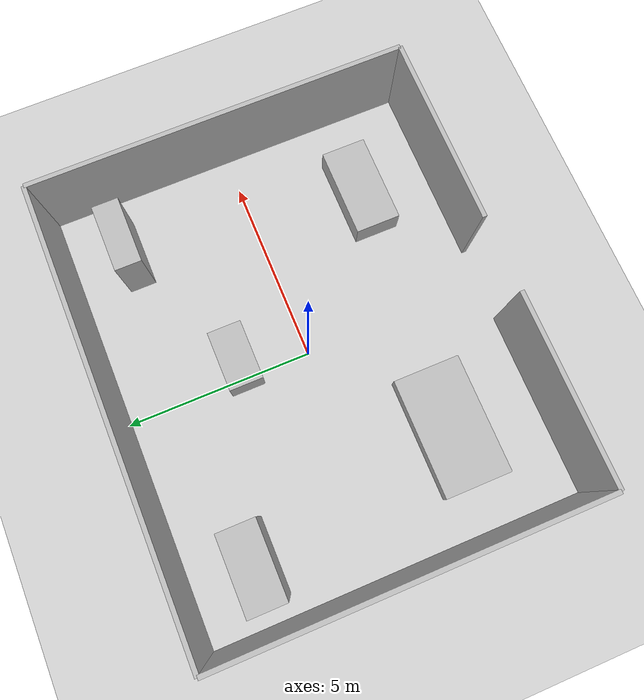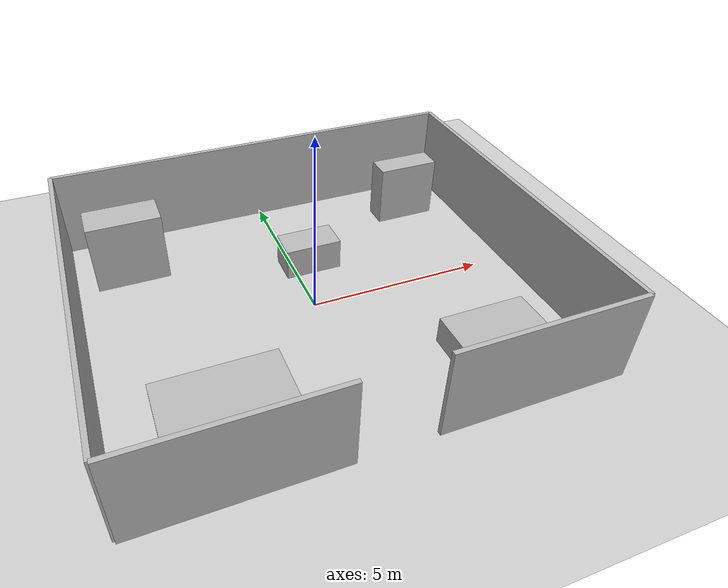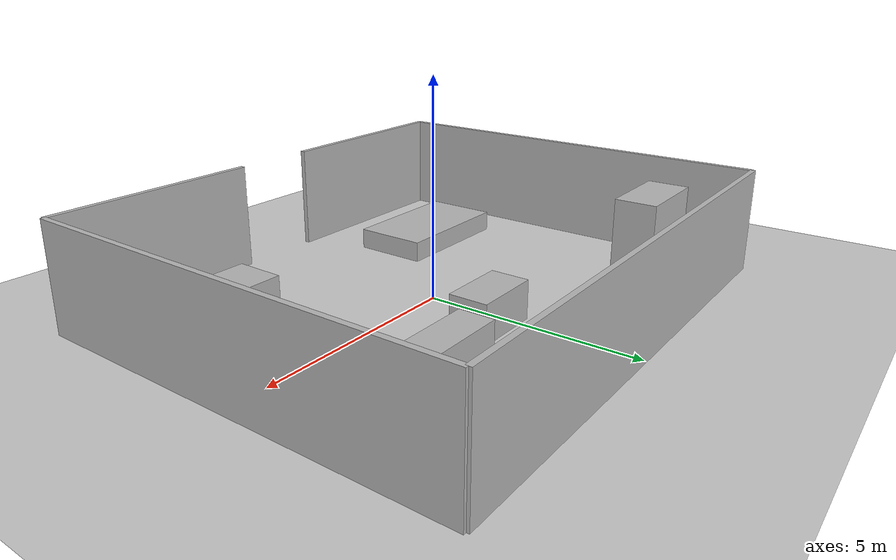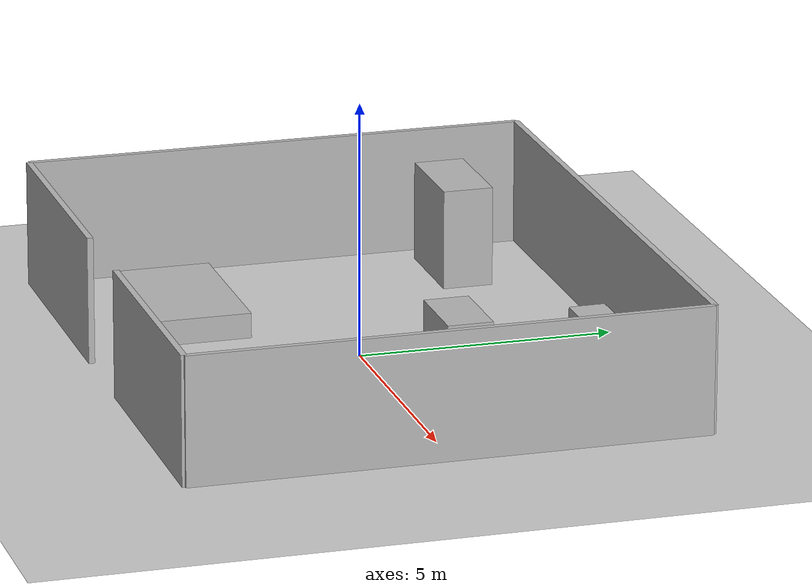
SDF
<?xml version="1.0" ?>
<sdf version="1.9">
  <world name="test_world">
    <plugin filename="gz-sim-physics-system" name="gz::sim::systems::Physics"/>
    <plugin filename="gz-sim-user-commands-system" name="gz::sim::systems::UserCommands"/>
    <plugin filename="gz-sim-scene-broadcaster-system" name="gz::sim::systems::SceneBroadcaster"/>
    <plugin filename="gz-sim-sensors-system" name="gz::sim::systems::Sensors">
      <render_engine>ogre2</render_engine>
    </plugin>

    <light type="directional" name="sun">
      <pose>0 0 10 0 0 0</pose>
      <direction>-0.5 0.1 -0.9</direction>
    </light>

    <model name="ground_plane">
      <static>true</static>
      <link name="link">
        <collision name="collision">
          <geometry>
            <plane>
              <normal>0 0 1</normal>
              <size>100 100</size>
            </plane>
          </geometry>
        </collision>
        <visual name="visual">
          <geometry>
            <plane>
              <normal>0 0 1</normal>
              <size>100 100</size>
            </plane>
          </geometry>
        </visual>
      </link>
    </model>

    <!-- POKOJ: 12 m x 10 m, wysokość ścian 2.5 m -->

    <model name="wall_top">
      <static>true</static>
      <pose>0 5.0 1.25 0 0 0</pose>
      <link name="link">
        <collision name="collision">
          <geometry>
            <box><size>12.0 0.12 2.5</size></box>
          </geometry>
        </collision>
        <visual name="visual">
          <geometry>
            <box><size>12.0 0.12 2.5</size></box>
          </geometry>
        </visual>
      </link>
    </model>

    <model name="wall_bottom_left">
      <static>true</static>
      <pose>-3.5 -5.0 1.25 0 0 0</pose>
      <link name="link">
        <collision name="collision">
          <geometry>
            <box><size>5.0 0.12 2.5</size></box>
          </geometry>
        </collision>
        <visual name="visual">
          <geometry>
            <box><size>5.0 0.12 2.5</size></box>
          </geometry>
        </visual>
      </link>
    </model>

    <model name="wall_bottom_right">
      <static>true</static>
      <pose>3.5 -5.0 1.25 0 0 0</pose>
      <link name="link">
        <collision name="collision">
          <geometry>
            <box><size>5.0 0.12 2.5</size></box>
          </geometry>
        </collision>
        <visual name="visual">
          <geometry>
            <box><size>5.0 0.12 2.5</size></box>
          </geometry>
        </visual>
      </link>
    </model>

    <model name="wall_left">
      <static>true</static>
      <pose>-6.0 0 1.25 0 0 0</pose>
      <link name="link">
        <collision name="collision">
          <geometry>
            <box><size>0.12 10.0 2.5</size></box>
          </geometry>
        </collision>
        <visual name="visual">
          <geometry>
            <box><size>0.12 10.0 2.5</size></box>
          </geometry>
        </visual>
      </link>
    </model>

    <model name="wall_right">
      <static>true</static>
      <pose>6.0 0 1.25 0 0 0</pose>
      <link name="link">
        <collision name="collision">
          <geometry>
            <box><size>0.12 10.0 2.5</size></box>
          </geometry>
        </collision>
        <visual name="visual">
          <geometry>
            <box><size>0.12 10.0 2.5</size></box>
          </geometry>
        </visual>
      </link>
    </model>

    <!-- Szafa -->
    <model name="wardrobe">
      <static>true</static>
      <pose>-4.4 3.2 1.0 0 0 0</pose>
      <link name="link">
        <collision name="collision">
          <geometry>
            <box><size>2.0 1.0 2.0</size></box>
          </geometry>
        </collision>
        <visual name="visual">
          <geometry>
            <box><size>2.0 1.0 2.0</size></box>
          </geometry>
        </visual>
      </link>
    </model>

    <!-- Regał -->
    <model name="bookshelf">
      <static>true</static>
      <pose>4.3 3.4 0.9 0 0 0</pose>
      <link name="link">
        <collision name="collision">
          <geometry>
            <box><size>1.8 0.7 1.8</size></box>
          </geometry>
        </collision>
        <visual name="visual">
          <geometry>
            <box><size>1.8 0.7 1.8</size></box>
          </geometry>
        </visual>
      </link>
    </model>

    <!-- Biurko -->
    <model name="desk">
      <static>true</static>
      <pose>3.6 -3.0 0.375 0 0 0</pose>
      <link name="link">
        <collision name="collision">
          <geometry>
            <box><size>2.4 1.2 0.75</size></box>
          </geometry>
        </collision>
        <visual name="visual">
          <geometry>
            <box><size>2.4 1.2 0.75</size></box>
          </geometry>
        </visual>
      </link>
    </model>

    <!-- Łóżko -->
    <model name="bed">
      <static>true</static>
      <pose>-3.2 -2.6 0.25 0 0 0</pose>
      <link name="link">
        <collision name="collision">
          <geometry>
            <box><size>3.2 1.8 0.5</size></box>
          </geometry>
        </collision>
        <visual name="visual">
          <geometry>
            <box><size>3.2 1.8 0.5</size></box>
          </geometry>
        </visual>
      </link>
    </model>

    <!-- Niska komoda / przeszkoda -->
    <model name="cabinet">
      <static>true</static>
      <pose>0.5 1.8 0.45 0 0 0</pose>
      <link name="link">
        <collision name="collision">
          <geometry>
            <box><size>1.6 0.9 0.9</size></box>
          </geometry>
        </collision>
        <visual name="visual">
          <geometry>
            <box><size>1.6 0.9 0.9</size></box>
          </geometry>
        </visual>
      </link>
    </model>

  </world>
</sdf>
